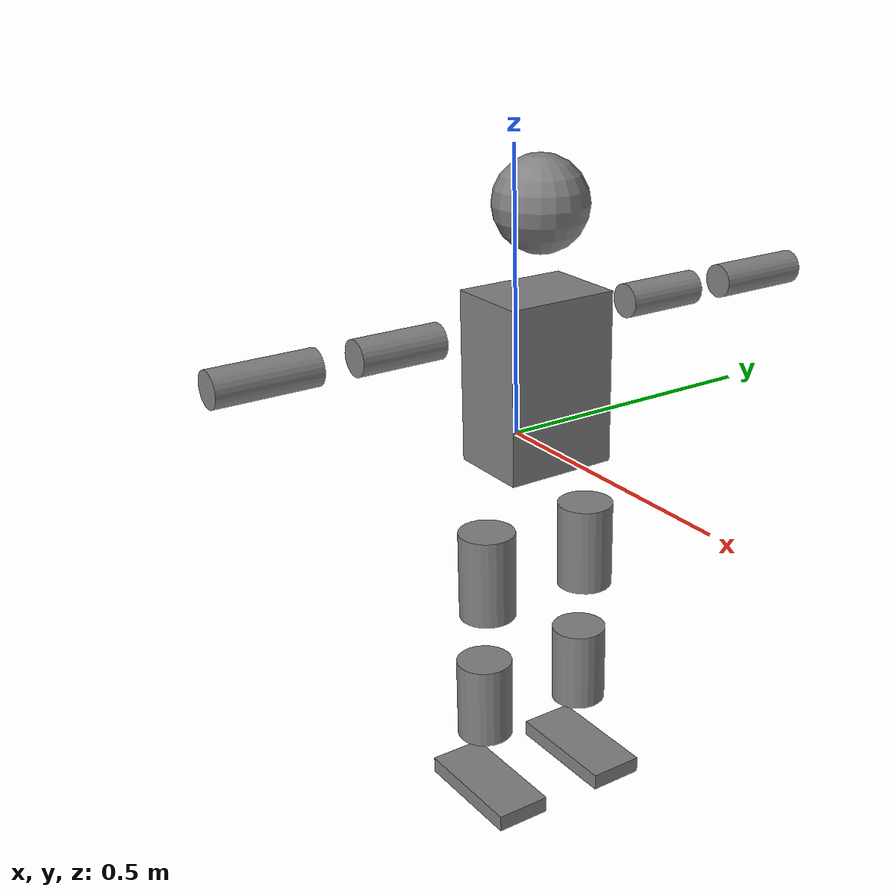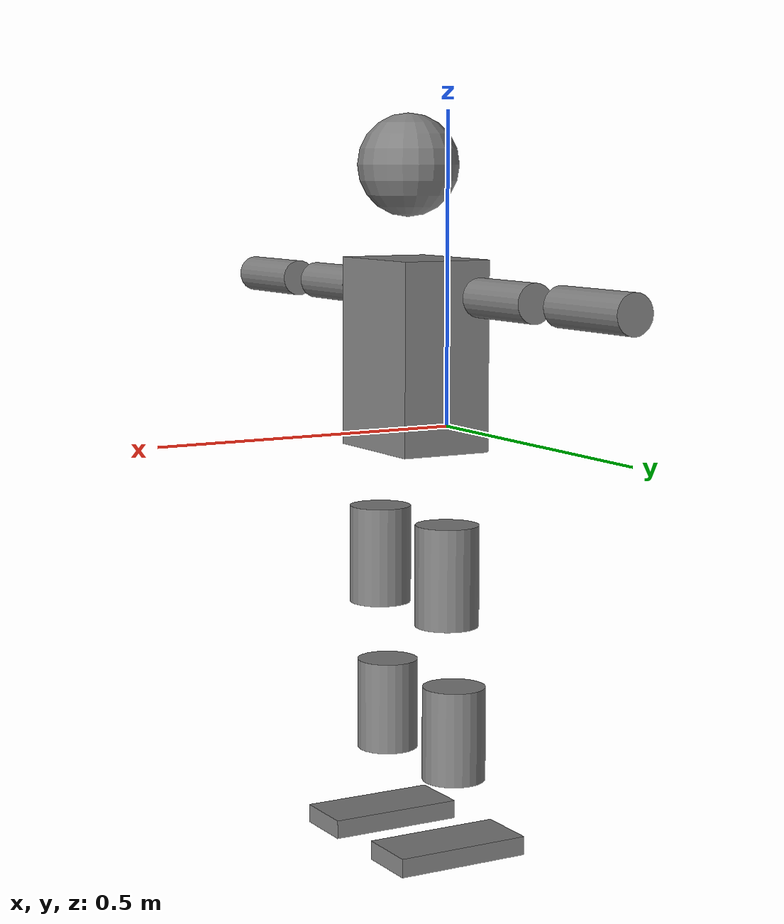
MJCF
<?xml version='1.0' encoding='utf-8'?>
<mujoco model="t1">
  <compiler angle="radian" boundmass="1e-06" boundinertia="1e-08" meshdir=".." />
  <worldbody>
    <body name="Trunk">
      <inertial pos="0.0551365 -1.42058e-06 0.105062" quat="0.99996 1.40561e-05 -0.00899532 -1.39249e-05" mass="11.7" diaginertia="0.0915404 0.0767787 0.0556055" />
      <joint type="free" />
      <geom size="0.075 0.1 0.15" pos="0.06 0 0.12" type="box" />
      <body name="H1" pos="0.0625 0 0.243">
        <inertial pos="-0.000508 -0.001403 0.057432" quat="0.763881 -0.0132172 0.00173419 0.645219" mass="0.44391" diaginertia="0.000241549 0.00022351 0.000149941" />
        <joint name="AAHead_yaw" pos="0 0 0" axis="0 0 1" range="-1.57 1.57" actuatorfrcrange="-7 7" />
        <body name="H2" pos="0 0 0.06185">
          <inertial pos="0.007802 0.001262 0.098631" quat="0.988453 0.106172 -0.0745686 -0.0782786" mass="0.631019" diaginertia="0.00203553 0.00192467 0.00172381" />
          <joint name="Head_pitch" pos="0 0 0" axis="0 1 0" range="-0.35 1.22" actuatorfrcrange="-7 7" />
          <geom size="0.08" pos="0.01 0 0.11" />
        </body>
      </body>
      <body name="AL1" pos="0.0575 0.1063 0.219" quat="1 0 0.000440565 0">
        <inertial pos="-0.000677 0.044974 0" quat="0.50423 0.495734 -0.50423 0.495734" mass="0.53" diaginertia="0.001367 0.00129329 0.000292711" />
        <joint name="Left_Shoulder_Pitch" pos="0 0 0" axis="0 1 0" range="-3.31 1.22" actuatorfrcrange="-18 18" />
        <body name="AL2" pos="0 0.047 0">
          <inertial pos="0.003862 0.037976 0" quat="0.487991 0.511727 -0.487991 0.511727" mass="0.16" diaginertia="0.000401 0.00034538 0.00017662" />
          <joint name="Left_Shoulder_Roll" pos="0 0 0" axis="1 0 0" range="-1.74 1.57" actuatorfrcrange="-18 18" />
          <body name="AL3" pos="0.00025 0.0605 0">
            <inertial pos="0 0.085353 -9.9e-05" quat="0.70641 0.707803 0 0" mass="1.02" diaginertia="0.012869 0.012798 0.000620953" />
            <joint name="Left_Elbow_Pitch" pos="0 0 0" axis="0 1 0" range="-2.27 2.27" actuatorfrcrange="-18 18" />
            <geom size="0.03 0.075" pos="0 0.05 0" quat="0.707105 0.707108 0 0" type="cylinder" />
            <body name="left_hand_link" pos="0 0.1471 0">
              <inertial pos="-0.000108 0.109573 0.000591" quat="0.707866 0.706347 -5.22939e-05 -0.000214913" mass="0.327214" diaginertia="0.008159 0.00813104 0.000214962" />
              <joint name="Left_Elbow_Yaw" pos="0 0 0" axis="0 0 1" range="-2.44 0" actuatorfrcrange="-18 18" />
              <geom size="0.03 0.0875" pos="0 0.13 0" quat="0.707105 0.707108 0 0" type="cylinder" />
            </body>
          </body>
        </body>
      </body>
      <body name="AR1" pos="0.0575 -0.1063 0.219" quat="1 0 0.000440565 0">
        <inertial pos="-0.000677 -0.044974 0" quat="0.50423 0.495734 -0.50423 0.495734" mass="0.53" diaginertia="0.001367 0.00129329 0.000292711" />
        <joint name="Right_Shoulder_Pitch" pos="0 0 0" axis="0 1 0" range="-3.31 1.22" actuatorfrcrange="-18 18" />
        <body name="AR2" pos="0 -0.047 0">
          <inertial pos="0.003862 -0.037976 0" quat="0.511727 0.487991 -0.511727 0.487991" mass="0.16" diaginertia="0.000401 0.00034538 0.00017662" />
          <joint name="Right_Shoulder_Roll" pos="0 0 0" axis="1 0 0" range="-1.57 1.74" actuatorfrcrange="-18 18" />
          <body name="AR3" pos="0.00025 -0.0605 0">
            <inertial pos="0 -0.085353 -9.9e-05" quat="0.707803 0.70641 0 0" mass="1.02" diaginertia="0.012869 0.012798 0.000620953" />
            <joint name="Right_Elbow_Pitch" pos="0 0 0" axis="0 1 0" range="-2.27 2.27" actuatorfrcrange="-18 18" />
            <geom size="0.03 0.075" pos="0 -0.05 0" quat="0.707105 0.707108 0 0" type="cylinder" />
            <body name="right_hand_link" pos="0 -0.1471 0">
              <inertial pos="-0.000108 -0.109573 0.000591" quat="0.706347 0.707866 0.000214913 5.22939e-05" mass="0.327214" diaginertia="0.008159 0.00813104 0.000214962" />
              <joint name="Right_Elbow_Yaw" pos="0 0 0" axis="0 0 1" range="0 2.44" actuatorfrcrange="-18 18" />
              <geom size="0.03 0.0875" pos="0 -0.13 0" quat="0.707105 0.707108 0 0" type="cylinder" />
            </body>
          </body>
        </body>
      </body>
      <body name="Waist" pos="0.0625 0 -0.1155">
        <inertial pos="0.002284 3e-06 0.007301" quat="0.983649 0.000360386 -0.180076 0.00269791" mass="2.581" diaginertia="0.00536742 0.005299 0.00474258" />
        <joint name="Waist" pos="0 0 0" axis="0 0 1" range="-1.57 1.57" actuatorfrcrange="-30 30" />
        <body name="Hip_Pitch_Left" pos="0 0.106 0">
          <inertial pos="0.000534 -0.007296 -0.018083" quat="0.975141 0.2211 0.0145808 0.0017406" mass="1.021" diaginertia="0.00180547 0.00145926 0.00125327" />
          <joint name="Left_Hip_Pitch" pos="0 0 0" axis="0 1 0" range="-1.8 1.57" actuatorfrcrange="-45 45" />
          <body name="Hip_Roll_Left" pos="0 0 -0.02">
            <inertial pos="0.001101 2.4e-05 -0.05375" quat="0.707081 -0.00599604 -0.00599604 0.707081" mass="0.385" diaginertia="0.001743 0.00151729 0.000514712" />
            <joint name="Left_Hip_Roll" pos="0 0 0" axis="1 0 0" range="-0.2 1.57" actuatorfrcrange="-30 30" />
            <body name="Hip_Yaw_Left" pos="0 0 -0.081854">
              <inertial pos="-0.007233 0.000206 -0.089184" quat="0.696808 -0.033953 -0.0315708 0.715758" mass="2.166" diaginertia="0.0257334 0.0253024 0.00259215" />
              <joint name="Left_Hip_Yaw" pos="0 0 0" axis="0 0 1" range="-1 1" actuatorfrcrange="-30 30" />
              <geom size="0.05 0.08" type="cylinder" />
              <body name="Shank_Left" pos="-0.014 0 -0.134">
                <inertial pos="-0.006012 0.000259 -0.124318" quat="0.997573 0.00144024 -0.023949 0.0653706" mass="1.73" diaginertia="0.0346951 0.0345375 0.00185844" />
                <joint name="Left_Knee_Pitch" pos="0 0 0" axis="0 1 0" range="0 2.34" actuatorfrcrange="-60 60" />
                <geom size="0.05 0.075" pos="0 0 -0.12" type="cylinder" />
                <body name="Ankle_Cross_Left" pos="0 0 -0.28">
                  <inertial pos="-0.003722 0 -0.007981" quat="0.443136 0.551027 0.551027 0.443136" mass="0.073" diaginertia="2.9e-05 2.56589e-05 1.13411e-05" />
                  <joint name="Left_Ankle_Pitch" pos="0 0 0" axis="0 1 0" range="-0.87 0.35" actuatorfrcrange="-20 20" />
                  <body name="left_foot_link" pos="0 0.00025 -0.012">
                    <inertial pos="-0.000249 0 -0.00914" quat="0 0.620755 0 0.784005" mass="0.685" diaginertia="0.00269786 0.002385 0.00218714" />
                    <joint name="Left_Ankle_Roll" pos="0 0 0" axis="1 0 0" range="-0.44 0.44" actuatorfrcrange="-15 15" />
                    <geom size="0.1115 0.05 0.015" pos="0.01 0 -0.015" type="box" />
                  </body>
                </body>
              </body>
            </body>
          </body>
        </body>
        <body name="Hip_Pitch_Right" pos="0 -0.106 0">
          <inertial pos="0.000534 0.007514 -0.018082" quat="0.973446 -0.228403 0.0147148 -0.00419349" mass="1.021" diaginertia="0.00180552 0.0014632 0.00124928" />
          <joint name="Right_Hip_Pitch" pos="0 0 0" axis="0 1 0" range="-1.8 1.57" actuatorfrcrange="-45 45" />
          <body name="Hip_Roll_Right" pos="0 0 -0.02">
            <inertial pos="0.001099 2.4e-05 -0.053748" quat="0.707081 -0.00599604 -0.00599604 0.707081" mass="0.385" diaginertia="0.001743 0.00151729 0.000514712" />
            <joint name="Right_Hip_Roll" pos="0 0 0" axis="1 0 0" range="-1.57 0.2" actuatorfrcrange="-30 30" />
            <body name="Hip_Yaw_Right" pos="0 0 -0.081854">
              <inertial pos="-0.007191 -0.000149 -0.08922" quat="0.714468 -0.0315638 -0.0336391 0.698146" mass="2.17" diaginertia="0.0257623 0.0253298 0.00259389" />
              <joint name="Right_Hip_Yaw" pos="0 0 0" axis="0 0 1" range="-1 1" actuatorfrcrange="-30 30" />
              <geom size="0.05 0.08" type="cylinder" />
              <body name="Shank_Right" pos="-0.014 0 -0.134">
                <inertial pos="-0.005741 -0.000541 -0.122602" quat="0.99926 -0.000580963 -0.023461 -0.0304754" mass="1.79" diaginertia="0.0351717 0.0349574 0.00196589" />
                <joint name="Right_Knee_Pitch" pos="0 0 0" axis="0 1 0" range="0 2.34" actuatorfrcrange="-60 60" />
                <geom size="0.05 0.075" pos="0 0 -0.12" type="cylinder" />
                <body name="Ankle_Cross_Right" pos="0 0 -0.28">
                  <inertial pos="-0.003722 0 -0.007981" quat="0.443136 0.551027 0.551027 0.443136" mass="0.073" diaginertia="2.9e-05 2.56589e-05 1.13411e-05" />
                  <joint name="Right_Ankle_Pitch" pos="0 0 0" axis="0 1 0" range="-0.87 0.35" actuatorfrcrange="-20 20" />
                  <body name="right_foot_link" pos="0 -0.00025 -0.012">
                    <inertial pos="-0.000248 0 -0.00914" quat="0 0.620755 0 0.784005" mass="0.685" diaginertia="0.00269786 0.002385 0.00218714" />
                    <joint name="Right_Ankle_Roll" pos="0 0 0" axis="1 0 0" range="-0.44 0.44" actuatorfrcrange="-15 15" />
                    <geom size="0.1115 0.05 0.015" pos="0.01 0 -0.015" type="box" />
                  </body>
                </body>
              </body>
            </body>
          </body>
        </body>
      </body>
    </body>
  </worldbody>
</mujoco>
